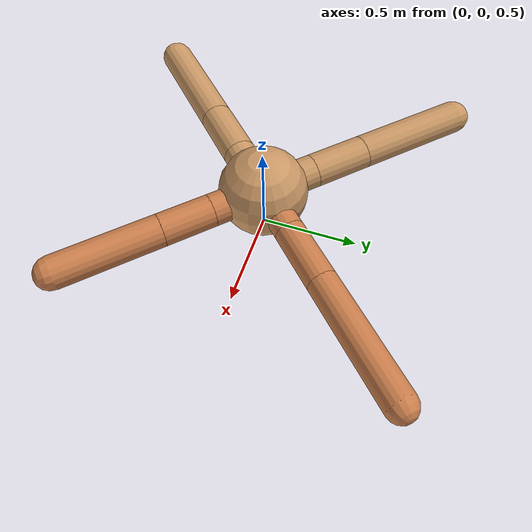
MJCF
<?xml version="1.0" ?>
<mujoco model="ant">

	<compiler angle="degree" coordinate="local" inertiafromgeom="true"/>

	<option integrator="RK4" timestep="0.01"/>

	<custom>

		<numeric data="0.0 0.0 0.55 1.0 0.0 0.0 0.0 0.0 1.0 0.0 -1.0 0.0 -1.0 0.0 1.0" name="init_qpos"/>

	</custom>

	<default>

		<joint armature="1" damping="1" limited="true"/>

		<geom conaffinity="0" condim="3" density="5.0" friction="1.5 0.1 0.1" margin="0.01" rgba="0.8 0.6 0.4 1"/>

	</default>

	<worldbody>

		<body name="torso" pos="0 0 0.75">

			<geom name="torso_geom" pos="0 0 0" size="0.22703394532372367" type="sphere"/>

			<!--joint armature="0" damping="0" limited="false" margin="0.01" name="root" pos="0 0 0" type="free"/-->

			<body name="front_left_leg" pos="0 0 0">

				<geom fromto="0 0 0 0.2 0.2 0" name="aux_1_geom" size="0.07561225682825007" type="capsule" rgba=".8 .5 .3 1"/>

				<body name="aux_1" pos="0.2 0.2 0">

					<joint axis="0 0 1" name="hip_1" pos="0.0 0.0 0.0" range="-40 40" type="hinge"/>

					<geom fromto="0 0 0 0.21688013832045458 0.21688013832045458 0" name="left_leg_geom" size="0.07561225682825007" type="capsule" rgba=".8 .5 .3 1"/>

					<body pos="0.21688013832045458 0.21688013832045458 0" name="front_left_foot">

						<joint axis="-1 1 0" name="ankle_1" pos="0.0 0.0 0.0" range="30 100" type="hinge"/>

						<geom fromto="0 0 0 0.43376027664090916 0.43376027664090916 0" name="left_ankle_geom" size="0.07561225682825007" type="capsule" rgba=".8 .5 .3 1"/>

					</body>

				</body>

			</body>

			<body name="front_right_leg" pos="0 0 0">

				<geom fromto="0 0 0 -0.2 0.2 0" name="aux_2_geom" size="0.0874695540196002" type="capsule"/>

				<body name="aux_2" pos="-0.2 0.2 0">

					<joint axis="0 0 1" name="hip_2" pos="0.0 0.0 0.0" range="-40 40" type="hinge"/>

					<geom fromto="0 0 0 -0.21015321231737813 0.21015321231737813 0" name="right_leg_geom" size="0.0874695540196002" type="capsule"/>

					<body pos="-0.21015321231737813 0.21015321231737813 0" name="front_right_foot">

						<joint axis="1 1 0" name="ankle_2" pos="0.0 0.0 0.0" range="-100 -30" type="hinge"/>

						<geom fromto="0 0 0 -0.42030642463475626 0.42030642463475626 0" name="right_ankle_geom" size="0.0874695540196002" type="capsule"/>

					</body>

				</body>

			</body>

			<body name="left_back_leg" pos="0 0 0">

				<geom fromto="0 0 0 -0.2 -0.2 0" name="aux_3_geom" size="0.08712411472431084" type="capsule"/>

				<body name="aux_3" pos="-0.2 -0.2 0">

					<joint axis="0 0 1" name="hip_3" pos="0.0 0.0 0.0" range="-40 40" type="hinge"/>

					<geom fromto="0 0 0 -0.21485411937582582 -0.21485411937582582 0" name="back_leg_geom" size="0.08712411472431084" type="capsule"/>

					<body pos="-0.21485411937582582 -0.21485411937582582 0" name="left_back_foot">

						<joint axis="-1 1 0" name="ankle_3" pos="0.0 0.0 0.0" range="-100 -30" type="hinge"/>

						<geom fromto="0 0 0 -0.42970823875165165 -0.42970823875165165 0" name="third_ankle_geom" size="0.08712411472431084" type="capsule"/>

					</body>

				</body>

			</body>

			<body name="right_back_leg" pos="0 0 0">

				<geom fromto="0 0 0 0.2 -0.2 0" name="aux_4_geom" size="0.08310009559770272" type="capsule" rgba=".8 .5 .3 1"/>

				<body name="aux_4" pos="0.2 -0.2 0">

					<joint axis="0 0 1" name="hip_4" pos="0.0 0.0 0.0" range="-40 40" type="hinge"/>

					<geom fromto="0 0 0 0.1839056309459601 -0.1839056309459601 0" name="rightback_leg_geom" size="0.08310009559770272" type="capsule" rgba=".8 .5 .3 1"/>

					<body pos="0.1839056309459601 -0.1839056309459601 0" name="right_back_foot">

						<joint axis="1 1 0" name="ankle_4" pos="0.0 0.0 0.0" range="30 100" type="hinge"/>

						<geom fromto="0 0 0 0.3678112618919202 -0.3678112618919202 0" name="fourth_ankle_geom" size="0.08310009559770272" type="capsule" rgba=".8 .5 .3 1"/>

					</body>

				</body>

			</body>

		</body>

	</worldbody>

	<actuator>

		<motor ctrllimited="true" ctrlrange="-1.0 1.0" joint="hip_4" gear="150"/>

		<motor ctrllimited="true" ctrlrange="-1.0 1.0" joint="ankle_4" gear="150"/>

		<motor ctrllimited="true" ctrlrange="-1.0 1.0" joint="hip_1" gear="150"/>

		<motor ctrllimited="true" ctrlrange="-1.0 1.0" joint="ankle_1" gear="150"/>

		<motor ctrllimited="true" ctrlrange="-1.0 1.0" joint="hip_2" gear="150"/>

		<motor ctrllimited="true" ctrlrange="-1.0 1.0" joint="ankle_2" gear="150"/>

		<motor ctrllimited="true" ctrlrange="-1.0 1.0" joint="hip_3" gear="150"/>

		<motor ctrllimited="true" ctrlrange="-1.0 1.0" joint="ankle_3" gear="150"/>

	</actuator>

</mujoco>
